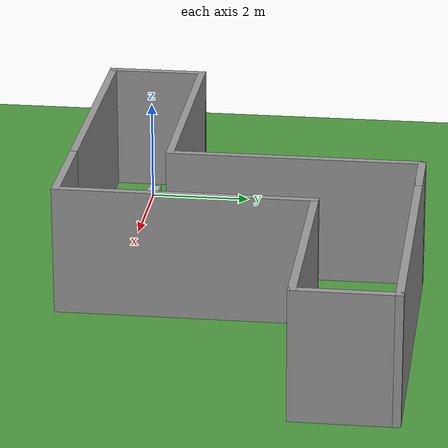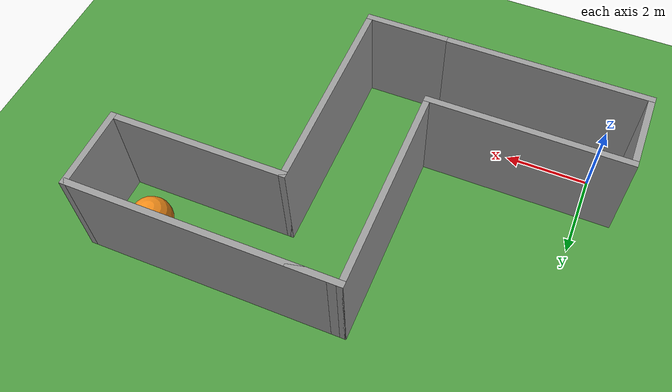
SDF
<sdf version="1.6">
 <world name="default">
  <gravity>0 0 -9.8</gravity>
  <magnetic_field>6e-06 2.3e-05 -4.2e-05</magnetic_field>
  <atmosphere type="adiabatic"/>
  <physics name="default_physics" default="0" type="ode">
   <max_step_size>0.001</max_step_size>
   <real_time_factor>1</real_time_factor>
   <real_time_update_rate>1000</real_time_update_rate>
  </physics>
  <scene>
   <ambient>0.4 0.4 0.4 1</ambient>
   <background>0.7 0.7 0.7 1</background>
   <shadows>1</shadows>
   <sky><clouds><speed>8</speed></clouds></sky>
   <grid>0</grid>
  </scene>
  <spherical_coordinates>
   <surface_model>EARTH_WGS84</surface_model>
   <latitude_deg>0</latitude_deg>
   <longitude_deg>0</longitude_deg>
   <elevation>0</elevation>
   <heading_deg>0</heading_deg>
  </spherical_coordinates>
  <model name="mbzirc19">
   <link name="grass">
    <pose>0 0 -0.505 0 -0 0</pose>
    <inertial>
     <mass>1e+06</mass>
     <inertia>
      <ixx>0.166667</ixx>
      <ixy>0</ixy>
      <ixz>0</ixz>
      <iyy>0.166667</iyy>
      <iyz>0</iyz>
      <izz>0.166667</izz>
     </inertia>
    </inertial>
    <visual name="visual">
     <geometry><box><size>100 60 1</size></box></geometry>
     <material>
      <lighting>1</lighting>
      <script>
       <uri>/home/tkakusa/catkin_ws/src/rover_research/models/world_1/materials/scripts</uri>
       <uri>/home/tkakusa/catkin_ws/src/rover_research/models/world_1/materials/textures</uri>
       <name>Kentland/Grass</name>
      </script>
     </material>
    </visual>
    <collision name="collision">
     <geometry><box><size>100 60 1</size></box></geometry>
     <surface>
      <friction>
       <ode><mu>1</mu><mu2>1</mu2><fdir1>0 0 0</fdir1><slip1>0</slip1><slip2>0</slip2></ode>
       <torsional>
        <coefficient>1</coefficient>
        <patch_radius>0</patch_radius>
        <surface_radius>0</surface_radius>
        <use_patch_radius>1</use_patch_radius>
        <ode><slip>0</slip></ode>
       </torsional>
      </friction>
      <bounce><restitution_coefficient>0</restitution_coefficient><threshold>1e+06</threshold></bounce>
      <contact>
       <collide_without_contact>0</collide_without_contact>
       <collide_without_contact_bitmask>1</collide_without_contact_bitmask>
       <collide_bitmask>1</collide_bitmask>
       <ode>
        <soft_cfm>0</soft_cfm>
        <soft_erp>0.2</soft_erp>
        <kp>1e+13</kp>
        <kd>1</kd>
        <max_vel>0.01</max_vel>
        <min_depth>0</min_depth>
       </ode>
       <bullet>
        <split_impulse>1</split_impulse>
        <split_impulse_penetration_threshold>-0.01</split_impulse_penetration_threshold>
        <soft_cfm>0</soft_cfm>
        <soft_erp>0.2</soft_erp>
        <kp>1e+13</kp>
        <kd>1</kd>
       </bullet>
      </contact>
     </surface>
    </collision>
   </link>
   <static>1</static>
  </model>
  <model name="myrobot">
   <link name="base_link">
    <inertial>
     <mass>41.002</mass>
     <inertia><ixx>4</ixx><ixy>0</ixy><ixz>0</ixz><iyy>4.00013</iyy><iyz>0</iyz><izz>4.00013</izz></inertia>
    </inertial>
    <collision name="base_link_collision"><geometry><box><size>0.5 0.25 0.1</size></box></geometry></collision>
    <collision name="base_link_fixed_joint_lump__back_ultrasonic_link_collision_1">
     <pose>-0.25 0 0 0 -0 0</pose>
     <geometry><box><size>0.02 0.02 0.02</size></box></geometry>
    </collision>
    <collision name="base_link_fixed_joint_lump__front_ultrasonic_link_collision_2">
     <pose>0.25 0 0 0 -0 0</pose>
     <geometry><box><size>0.02 0.02 0.02</size></box></geometry>
    </collision>
    <visual name="base_link_visual"><geometry><box><size>0.5 0.25 0.1</size></box></geometry></visual>
    <visual name="base_link_fixed_joint_lump__back_ultrasonic_link_visual_1">
     <pose>-0.25 0 0 0 -0 0</pose>
     <geometry><box><size>0.02 0.02 0.02</size></box></geometry>
     <material><script><uri>__default__</uri><name>__default__</name></script></material>
    </visual>
    <visual name="base_link_fixed_joint_lump__front_ultrasonic_link_visual_2">
     <pose>0.25 0 0 0 -0 0</pose>
     <geometry><box><size>0.02 0.02 0.02</size></box></geometry>
     <material><script><uri>__default__</uri><name>__default__</name></script></material>
    </visual>
    <sensor name="back_ultrasonic" type="ray">
     <always_on>1</always_on>
     <update_rate>5</update_rate>
     <visualize>1</visualize>
     <ray>
      <scan>
       <horizontal>
        <samples>720</samples>
        <resolution>1</resolution>
        <min_angle>2.87979</min_angle>
        <max_angle>3.40339</max_angle>
       </horizontal>
       <vertical><samples>1</samples><min_angle>0</min_angle><max_angle>0</max_angle></vertical>
      </scan>
      <range><min>0.1</min><max>4</max><resolution>0.01</resolution></range>
     </ray>
     <plugin name="gazebo_back_ultrasonic_controller" filename="libhector_gazebo_ros_sonar.so">
      <gaussianNoise>0.005</gaussianNoise>
      <topicName>back_ultrasonic</topicName>
      <frameId>back_ultrasonic_link</frameId>
      <robotNamespace>/</robotNamespace>
     </plugin>
     <pose>-0.25 0 0 0 -0 0</pose>
    </sensor>
    <sensor name="front_ultrasonic" type="ray">
     <always_on>1</always_on>
     <update_rate>5</update_rate>
     <visualize>1</visualize>
     <ray>
      <scan>
       <horizontal>
        <samples>720</samples>
        <resolution>1</resolution>
        <min_angle>-0.261799</min_angle>
        <max_angle>0.261799</max_angle>
       </horizontal>
       <vertical><samples>1</samples><min_angle>0</min_angle><max_angle>0</max_angle></vertical>
      </scan>
      <range><min>0.1</min><max>4</max><resolution>0.01</resolution></range>
     </ray>
     <plugin name="gazebo_front_ultrasonic_controller" filename="libhector_gazebo_ros_sonar.so">
      <gaussianNoise>0.005</gaussianNoise>
      <topicName>front_ultrasonic</topicName>
      <frameId>front_ultrasonic_link</frameId>
      <robotNamespace>/</robotNamespace>
     </plugin>
     <pose>0.25 0 0 0 -0 0</pose>
    </sensor>
   </link>
   <link name="wheel_back_left">
    <pose>-0.125 -0.125 0 0 -0 0</pose>
    <inertial>
     <mass>2</mass>
     <inertia><ixx>1</ixx><ixy>0</ixy><ixz>0</ixz><iyy>1</iyy><iyz>0</iyz><izz>1</izz></inertia>
    </inertial>
    <collision name="wheel_back_left_collision">
     <pose>0 0 0 1.57075 -0 0</pose>
     <geometry><cylinder><length>0.04</length><radius>0.07</radius></cylinder></geometry>
    </collision>
    <visual name="wheel_back_left_visual">
     <pose>0 0 0 1.57075 -0 0</pose>
     <geometry><cylinder><length>0.04</length><radius>0.07</radius></cylinder></geometry>
    </visual>
   </link>
   <joint name="base_to_back_left_wheel" type="revolute">
    <child>wheel_back_left</child>
    <parent>base_link</parent>
    <axis>
     <xyz>0 1 0</xyz>
     <limit><lower>-1e+16</lower><upper>1e+16</upper></limit>
     <dynamics><spring_reference>0</spring_reference><spring_stiffness>0</spring_stiffness></dynamics>
     <use_parent_model_frame>1</use_parent_model_frame>
    </axis>
   </joint>
   <link name="wheel_back_right">
    <pose>-0.125 0.125 0 0 -0 0</pose>
    <inertial>
     <mass>2</mass>
     <inertia><ixx>1</ixx><ixy>0</ixy><ixz>0</ixz><iyy>1</iyy><iyz>0</iyz><izz>1</izz></inertia>
    </inertial>
    <collision name="wheel_back_right_collision">
     <pose>0 0 0 1.57075 -0 0</pose>
     <geometry><cylinder><length>0.04</length><radius>0.07</radius></cylinder></geometry>
    </collision>
    <visual name="wheel_back_right_visual">
     <pose>0 0 0 1.57075 -0 0</pose>
     <geometry><cylinder><length>0.04</length><radius>0.07</radius></cylinder></geometry>
    </visual>
   </link>
   <joint name="base_to_back_right_wheel" type="revolute">
    <child>wheel_back_right</child>
    <parent>base_link</parent>
    <axis>
     <xyz>0 1 0</xyz>
     <limit><lower>-1e+16</lower><upper>1e+16</upper></limit>
     <dynamics><spring_reference>0</spring_reference><spring_stiffness>0</spring_stiffness></dynamics>
     <use_parent_model_frame>1</use_parent_model_frame>
    </axis>
   </joint>
   <link name="wheel_front_left">
    <pose>0.125 -0.125 0 0 -0 0</pose>
    <inertial>
     <mass>2</mass>
     <inertia><ixx>1</ixx><ixy>0</ixy><ixz>0</ixz><iyy>1</iyy><iyz>0</iyz><izz>1</izz></inertia>
    </inertial>
    <collision name="wheel_front_left_collision">
     <pose>0 0 0 1.57075 -0 0</pose>
     <geometry><cylinder><length>0.04</length><radius>0.07</radius></cylinder></geometry>
    </collision>
    <visual name="wheel_front_left_visual">
     <pose>0 0 0 1.57075 -0 0</pose>
     <geometry><cylinder><length>0.04</length><radius>0.07</radius></cylinder></geometry>
    </visual>
   </link>
   <joint name="base_to_front_left_wheel" type="revolute">
    <child>wheel_front_left</child>
    <parent>base_link</parent>
    <axis>
     <xyz>0 1 0</xyz>
     <limit><lower>-1e+16</lower><upper>1e+16</upper></limit>
     <dynamics><spring_reference>0</spring_reference><spring_stiffness>0</spring_stiffness></dynamics>
     <use_parent_model_frame>1</use_parent_model_frame>
    </axis>
   </joint>
   <link name="wheel_front_right">
    <pose>0.125 0.125 0 0 -0 0</pose>
    <inertial>
     <mass>2</mass>
     <inertia><ixx>1</ixx><ixy>0</ixy><ixz>0</ixz><iyy>1</iyy><iyz>0</iyz><izz>1</izz></inertia>
    </inertial>
    <collision name="wheel_front_right_collision">
     <pose>0 0 0 1.57075 -0 0</pose>
     <geometry><cylinder><length>0.04</length><radius>0.07</radius></cylinder></geometry>
    </collision>
    <visual name="wheel_front_right_visual">
     <pose>0 0 0 1.57075 -0 0</pose>
     <geometry><cylinder><length>0.04</length><radius>0.07</radius></cylinder></geometry>
    </visual>
   </link>
   <joint name="base_to_front_right_wheel" type="revolute">
    <child>wheel_front_right</child>
    <parent>base_link</parent>
    <axis>
     <xyz>0 1 0</xyz>
     <limit><lower>-1e+16</lower><upper>1e+16</upper></limit>
     <dynamics><spring_reference>0</spring_reference><spring_stiffness>0</spring_stiffness></dynamics>
     <use_parent_model_frame>1</use_parent_model_frame>
    </axis>
   </joint>
   <link name="pan_tilt_link">
    <pose>0.225 0 0.05 0 -0 0</pose>
    <inertial>
     <pose>2.5e-05 0 5e-05 0 -0 0</pose>
     <mass>1.00101</mass>
     <inertia><ixx>2</ixx><ixy>0</ixy><ixz>-1.25872e-06</ixz><iyy>2</iyy><iyz>0</iyz><izz>2</izz></inertia>
    </inertial>
    <collision name="pan_tilt_link_collision">
     <pose>0 0 0.03 0 -0 0</pose>
     <geometry><cylinder><length>0.06</length><radius>0.025</radius></cylinder></geometry>
    </collision>
    <collision name="pan_tilt_link_fixed_joint_lump__camera_link_collision_1">
     <pose>0.05 0 0.02 0 -0 0</pose>
     <geometry><box><size>0.02 0.02 0.02</size></box></geometry>
    </collision>
    <collision name="pan_tilt_link_fixed_joint_lump__pan_ultrasonic_link_collision_2">
     <pose>0.025 0 0.05 0 -0 0</pose>
     <geometry><box><size>0.02 0.02 0.02</size></box></geometry>
    </collision>
    <visual name="pan_tilt_link_visual">
     <pose>0 0 0.03 0 -0 0</pose>
     <geometry><cylinder><length>0.06</length><radius>0.025</radius></cylinder></geometry>
    </visual>
    <visual name="pan_tilt_link_fixed_joint_lump__camera_link_visual_1">
     <pose>0.05 0 0.02 0 -0 0</pose>
     <geometry><box><size>0.02 0.02 0.02</size></box></geometry>
     <material><script><uri>__default__</uri><name>__default__</name></script></material>
    </visual>
    <visual name="pan_tilt_link_fixed_joint_lump__pan_ultrasonic_link_visual_2">
     <pose>0.025 0 0.05 0 -0 0</pose>
     <geometry><box><size>0.02 0.02 0.02</size></box></geometry>
     <material><script><uri>__default__</uri><name>__default__</name></script></material>
    </visual>
    <sensor name="camera1" type="camera">
     <update_rate>30</update_rate>
     <camera name="head">
      <horizontal_fov>1.39626</horizontal_fov>
      <image><width>800</width><height>800</height><format>R8G8B8</format></image>
      <clip><near>0.02</near><far>300</far></clip>
      <noise><type>gaussian</type><mean>0</mean><stddev>0.007</stddev></noise>
     </camera>
     <plugin name="camera_controller" filename="libgazebo_ros_camera.so">
      <alwaysOn>true</alwaysOn>
      <updateRate>0.0</updateRate>
      <cameraName>camera1</cameraName>
      <imageTopicName>image_raw</imageTopicName>
      <cameraInfoTopicName>camera_info</cameraInfoTopicName>
      <frameName>camera_link</frameName>
      <hackBaseline>0.07</hackBaseline>
      <distortionK1>0.0</distortionK1>
      <distortionK2>0.0</distortionK2>
      <distortionK3>0.0</distortionK3>
      <distortionT1>0.0</distortionT1>
      <distortionT2>0.0</distortionT2>
      <robotNamespace>/</robotNamespace>
     </plugin>
     <pose>0.05 0 0.02 0 -0 0</pose>
    </sensor>
    <sensor name="pan_ultrasonic" type="ray">
     <always_on>1</always_on>
     <update_rate>5</update_rate>
     <visualize>1</visualize>
     <ray>
      <scan>
       <horizontal>
        <samples>720</samples>
        <resolution>1</resolution>
        <min_angle>-0.261799</min_angle>
        <max_angle>0.261799</max_angle>
       </horizontal>
       <vertical><samples>1</samples><min_angle>0</min_angle><max_angle>0</max_angle></vertical>
      </scan>
      <range><min>0.1</min><max>4</max><resolution>0.01</resolution></range>
     </ray>
     <plugin name="gazebo_pan_ultrasonic_controller" filename="libhector_gazebo_ros_sonar.so">
      <gaussianNoise>0.005</gaussianNoise>
      <topicName>pan_ultrasonic</topicName>
      <frameId>pan_ultrasonic_link</frameId>
      <robotNamespace>/</robotNamespace>
     </plugin>
     <pose>0.025 0 0.05 0 -0 0</pose>
    </sensor>
   </link>
   <joint name="base_to_pan_tilt" type="revolute">
    <child>pan_tilt_link</child>
    <parent>base_link</parent>
    <axis>
     <xyz>0 0 1</xyz>
     <limit><lower>-1.5708</lower><upper>1.5708</upper><effort>1000</effort><velocity>0.5</velocity></limit>
     <dynamics><spring_reference>0</spring_reference><spring_stiffness>0</spring_stiffness></dynamics>
     <use_parent_model_frame>1</use_parent_model_frame>
    </axis>
   </joint>
   <plugin name="skid_steer_drive_controller" filename="libgazebo_ros_skid_steer_drive.so">
    <updateRate>100.0</updateRate>
    <robotNamespace>/</robotNamespace>
    <leftFrontJoint>base_to_front_left_wheel</leftFrontJoint>
    <rightFrontJoint>base_to_front_right_wheel</rightFrontJoint>
    <leftRearJoint>base_to_back_left_wheel</leftRearJoint>
    <rightRearJoint>base_to_back_right_wheel</rightRearJoint>
    <wheelSeparation>0.25</wheelSeparation>
    <wheelDiameter>0.14</wheelDiameter>
    <robotBaseFrame>base_link</robotBaseFrame>
    <torque>10</torque>
    <topicName>cmd_vel</topicName>
    <broadcastTF>false</broadcastTF>
   </plugin>
   <plugin name="gazebo_ros_control" filename="libgazebo_ros_control.so">
    <robotNamespace>/robot</robotNamespace>
   </plugin>
   <static>0</static>
   <plugin name="imu_plugin" filename="libgazebo_ros_imu.so">
    <alwaysOn>true</alwaysOn>
    <topicName>imu</topicName>
    <serviceName>imu_service</serviceName>
    <gaussianNoise>0.0</gaussianNoise>
    <updateRate>5.0</updateRate>
    <robotNamespace>/</robotNamespace>
    <bodyName>base_link</bodyName>
    <xyzOffset>0 0 0</xyzOffset>
    <rpyOffset>0 -0 0</rpyOffset>
   </plugin>
   <pose>-9.8e-05 0.000211 0.064999 4e-06 -1e-06 9.2e-05</pose>
  </model>
  <model name="maze_1_0">
   <pose>4.70174 2.44391 0 0 -0 0</pose>
   <link name="Wall_16">
    <collision name="Wall_16_Collision">
     <geometry><box><size>5 0.15 2.5</size></box></geometry>
     <pose>0 0 1.25 0 -0 0</pose>
    </collision>
    <visual name="Wall_16_Visual">
     <pose>0 0 1.25 0 -0 0</pose>
     <geometry><box><size>5 0.15 2.5</size></box></geometry>
     <material>
      <script><uri>file://media/materials/scripts/gazebo.material</uri><name>Gazebo/Grey</name></script>
      <ambient>1 1 1 1</ambient>
     </material>
    </visual>
    <pose>-2.975 -3.35 0 0 -0 0</pose>
   </link>
   <link name="Wall_17">
    <collision name="Wall_17_Collision">
     <geometry><box><size>2 0.15 2.5</size></box></geometry>
     <pose>0 0 1.25 0 -0 0</pose>
    </collision>
    <visual name="Wall_17_Visual">
     <pose>0 0 1.25 0 -0 0</pose>
     <geometry><box><size>2 0.15 2.5</size></box></geometry>
     <material>
      <script><uri>file://media/materials/scripts/gazebo.material</uri><name>Gazebo/Grey</name></script>
      <ambient>1 1 1 1</ambient>
     </material>
    </visual>
    <pose>0.375 -3.35 0 0 -0 0</pose>
   </link>
   <link name="Wall_18">
    <collision name="Wall_18_Collision">
     <geometry><box><size>5 0.15 2.5</size></box></geometry>
     <pose>0 0 1.25 0 -0 0</pose>
    </collision>
    <visual name="Wall_18_Visual">
     <pose>0 0 1.25 0 -0 0</pose>
     <geometry><box><size>5 0.15 2.5</size></box></geometry>
     <material>
      <script><uri>file://media/materials/scripts/gazebo.material</uri><name>Gazebo/Grey</name></script>
      <ambient>1 1 1 1</ambient>
     </material>
    </visual>
    <pose>1.3 -0.925 0 0 -0 1.5708</pose>
   </link>
   <link name="Wall_19">
    <collision name="Wall_19_Collision">
     <geometry><box><size>4.25 0.15 2.5</size></box></geometry>
     <pose>0 0 1.25 0 -0 0</pose>
    </collision>
    <visual name="Wall_19_Visual">
     <pose>0 0 1.25 0 -0 0</pose>
     <geometry><box><size>4.25 0.15 2.5</size></box></geometry>
     <material>
      <script><uri>file://media/materials/scripts/gazebo.material</uri><name>Gazebo/Grey</name></script>
      <ambient>1 1 1 1</ambient>
     </material>
    </visual>
    <pose>3.35 1.5 0 0 -0 0</pose>
   </link>
   <link name="Wall_29">
    <collision name="Wall_29_Collision">
     <geometry><box><size>2 0.15 2.5</size></box></geometry>
     <pose>0 0 1.25 0 -0 0</pose>
    </collision>
    <visual name="Wall_29_Visual">
     <pose>0 0 1.25 0 -0 0</pose>
     <geometry><box><size>2 0.15 2.5</size></box></geometry>
     <material>
      <script><uri>file://media/materials/scripts/gazebo.material</uri><name>Gazebo/Grey</name></script>
      <ambient>1 1 1 1</ambient>
     </material>
    </visual>
    <pose>5.4 2.425 0 0 -0 1.5708</pose>
   </link>
   <link name="Wall_30">
    <collision name="Wall_30_Collision">
     <geometry><box><size>6 0.15 2.5</size></box></geometry>
     <pose>0 0 1.25 0 -0 0</pose>
    </collision>
    <visual name="Wall_30_Visual">
     <pose>0 0 1.25 0 -0 0</pose>
     <geometry><box><size>6 0.15 2.5</size></box></geometry>
     <material>
      <script><uri>file://media/materials/scripts/gazebo.material</uri><name>Gazebo/Grey</name></script>
      <ambient>1 1 1 1</ambient>
     </material>
    </visual>
    <pose>2.475 3.35 0 0 -0 3.14159</pose>
   </link>
   <link name="Wall_33">
    <collision name="Wall_33_Collision">
     <geometry><box><size>2 0.15 2.5</size></box></geometry>
     <pose>0 0 1.25 0 -0 0</pose>
    </collision>
    <visual name="Wall_33_Visual">
     <pose>0 0 1.25 0 -0 0</pose>
     <geometry><box><size>2 0.15 2.5</size></box></geometry>
     <material>
      <script><uri>file://media/materials/scripts/gazebo.material</uri><name>Gazebo/Grey</name></script>
      <ambient>1 1 1 1</ambient>
     </material>
    </visual>
    <pose>-5.4 -2.425 0 0 -0 1.5708</pose>
   </link>
   <link name="Wall_35">
    <collision name="Wall_35_Collision">
     <geometry><box><size>4.75 0.15 2.5</size></box></geometry>
     <pose>0 0 1.25 0 -0 0</pose>
    </collision>
    <visual name="Wall_35_Visual">
     <pose>0 0 1.25 0 -0 0</pose>
     <geometry><box><size>4.75 0.15 2.5</size></box></geometry>
     <material>
      <script><uri>file://media/materials/scripts/gazebo.material</uri><name>Gazebo/Grey</name></script>
      <ambient>1 1 1 1</ambient>
     </material>
    </visual>
    <pose>-3.1 -1.5 0 0 -0 0</pose>
   </link>
   <link name="Wall_36">
    <collision name="Wall_36_Collision">
     <geometry><box><size>5 0.15 2.5</size></box></geometry>
     <pose>0 0 1.25 0 -0 0</pose>
    </collision>
    <visual name="Wall_36_Visual">
     <pose>0 0 1.25 0 -0 0</pose>
     <geometry><box><size>5 0.15 2.5</size></box></geometry>
     <material>
      <script><uri>file://media/materials/scripts/gazebo.material</uri><name>Gazebo/Grey</name></script>
      <ambient>1 1 1 1</ambient>
     </material>
    </visual>
    <pose>-0.8 0.925 0 0 -0 1.5708</pose>
   </link>
   <link name="Wall_37">
    <collision name="Wall_37_Collision">
     <geometry><box><size>1.25 0.15 2.5</size></box></geometry>
     <pose>0 0 1.25 0 -0 0</pose>
    </collision>
    <visual name="Wall_37_Visual">
     <pose>0 0 1.25 0 -0 0</pose>
     <geometry><box><size>1.25 0.15 2.5</size></box></geometry>
     <material>
      <script><uri>file://media/materials/scripts/gazebo.material</uri><name>Gazebo/Grey</name></script>
      <ambient>1 1 1 1</ambient>
     </material>
    </visual>
    <pose>-0.25 3.35 0 0 -0 0</pose>
   </link>
   <static>1</static>
  </model>
  <model name="my_model_0">
   <pose>8.98767 5.00253 0.495 0 -0 0</pose>
   <link name="balloon_link">
    <inertial>
     <mass>1</mass>
     <inertia><ixx>1</ixx><ixy>0</ixy><ixz>0</ixz><iyy>1</iyy><iyz>0</iyz><izz>1</izz></inertia>
    </inertial>
    <visual name="visual">
     <geometry><sphere><radius>0.5</radius></sphere></geometry>
     <material>
      <script><uri>file://media/materials/scripts/gazebo.material</uri><name>Gazebo/Orange</name></script>
     </material>
    </visual>
    <collision name="collision"><geometry><sphere><radius>0.5</radius></sphere></geometry></collision>
   </link>
  </model>
 </world>
</sdf>
